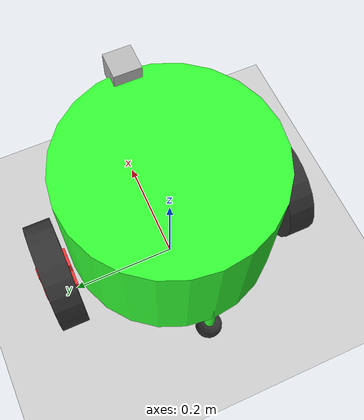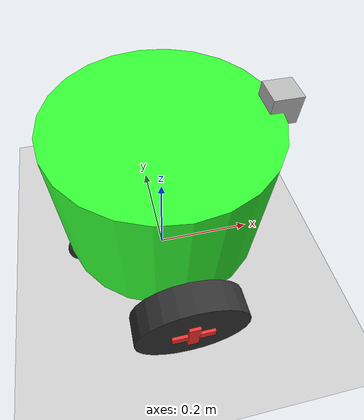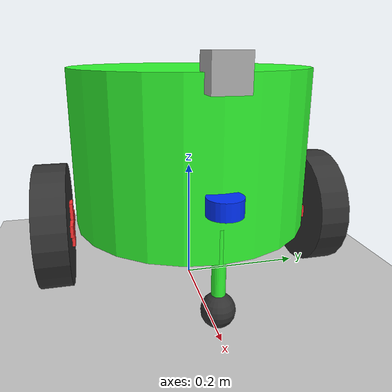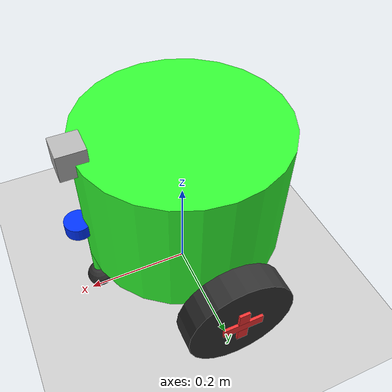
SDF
<?xml version="1.0"?>
<sdf version='1.11'>
  <world name='empty'>
    <physics name='1ms' type='ignored'>
      <max_step_size>0.001</max_step_size>
      <real_time_factor>1</real_time_factor>
      <real_time_update_rate>1000</real_time_update_rate>
    </physics>
    <plugin name='gz::sim::systems::Physics' filename='gz-sim-physics-system'/>
    <plugin name='gz::sim::systems::UserCommands' filename='gz-sim-user-commands-system'/>
    <plugin name='gz::sim::systems::SceneBroadcaster' filename='gz-sim-scene-broadcaster-system'/>
    <plugin name='gz::sim::systems::Contact' filename='gz-sim-contact-system'/>
    <gravity>0 0 -9.8</gravity>
    <magnetic_field>6e-06 2.3e-05 -4.2e-05</magnetic_field>
    <atmosphere type='adiabatic'/>

    <plugin filename="gz-sim-navsat-system" name="gz::sim::systems::NavSat"/>
    <spherical_coordinates>
      <surface_model>EARTH_WGS84</surface_model>
      <world_frame_orientation>ENU</world_frame_orientation>
      <latitude_deg>45.0</latitude_deg>
      <longitude_deg>-81.0</longitude_deg>
      <elevation>0.0</elevation>
      <heading_deg>0.0</heading_deg>
    </spherical_coordinates>

    <scene>
      <ambient>0.400000006 0.400000006 0.400000006 1</ambient>
      <background>0.699999988 0.699999988 0.699999988 1</background>
      <sky></sky>
      <shadows>false</shadows>
    </scene>
    <model name='ground_plane'>
      <static>true</static>
      <link name='link'>
        <collision name='collision'>
          <geometry>
            <plane>
              <normal>0 0 1</normal>
              <size>1000 1000</size>
            </plane>
          </geometry>
          <surface>
            <friction>
              <ode/>
            </friction>
            <bounce/>
            <contact/>
          </surface>
        </collision>
        <visual name='visual'>
          <geometry>
            <plane>
              <normal>0 0 1</normal>
              <size>1000 1000</size>
            </plane>
          </geometry>
          <material>
            <ambient>0.8 0.8 0.8 1</ambient>
            <diffuse>0.8 0.8 0.8 1</diffuse>
            <specular>0.8 0.8 0.8 1</specular>
          </material>
        </visual>
        <pose>0 0 0 0 -0 0</pose>
        <inertial>
          <pose>0 0 0 0 -0 0</pose>
          <mass>1</mass>
          <inertia>
            <ixx>1</ixx>
            <ixy>0</ixy>
            <ixz>0</ixz>
            <iyy>1</iyy>
            <iyz>0</iyz>
            <izz>1</izz>
          </inertia>
        </inertial>
        <enable_wind>false</enable_wind>
      </link>
      <pose>0 0 0 0 -0 0</pose>
      <self_collide>false</self_collide>
    </model>
    <light name='sun' type='directional'>
      <pose>0 0 10 0 -0 0</pose>
      <cast_shadows>true</cast_shadows>
      <intensity>1</intensity>
      <direction>-0.5 0.1 -0.9</direction>
      <diffuse>0.8 0.8 0.8 1</diffuse>
      <specular>0.2 0.2 0.2 1</specular>
      <attenuation>
        <range>1000</range>
        <linear>0.01</linear>
        <constant>0.90000000000000002</constant>
        <quadratic>0.001</quadratic>
      </attenuation>
      <spot>
        <inner_angle>0</inner_angle>
        <outer_angle>0</outer_angle>
        <falloff>0</falloff>
      </spot>
    </light>

    <model name="roundbot">
      <self_collide>true</self_collide>
      <pose>0 0 0 0 0 0</pose>
      <include merge="true">
        <uri>package://roundbot_description/models/roundbot</uri>
      </include>
    </model>
  </world>
</sdf>

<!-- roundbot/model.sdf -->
<sdf version="1.11">
  <model name='roundbot'>
    <link name="base_footprint">
      <pose>0 0 0 0 0 0</pose>
    </link>

    <link name="chassis">
      <pose>0 0 0.2375 0 0 0</pose>

      <visual name="visual_chassis">
        <geometry>
          <cylinder>
            <radius>0.19</radius>
            <length>0.25</length>
          </cylinder>
        </geometry>

        <material>
          <ambient>0.2 1.0 0.2 1</ambient>
          <diffuse>0.2 1.0 0.2 1</diffuse>
          <specular>0.2 1.0 0.2 1</specular>
        </material>
      </visual>
      <visual name="front_caster_post">
        <pose>0.18 0 -0.125 0 0 0</pose>
        <geometry>
          <cylinder>
            <radius>0.01</radius>
            <length>0.1</length>
          </cylinder>
        </geometry>

        <material>
          <ambient>0.2 1.0 0.2 1</ambient>
          <diffuse>0.2 1.0 0.2 1</diffuse>
          <specular>0.2 1.0 0.2 1</specular>
        </material>
      </visual>
      <visual name="visual_front_caster">
        <pose>0.18 0 -0.2 0 0 0</pose>
        <geometry>
          <sphere>
            <radius>0.025</radius>
          </sphere>
        </geometry>

        <material>
          <ambient>0.2 0.2 0.2 1</ambient>
          <diffuse>0.2 0.2 0.2 1</diffuse>
          <specular>0.2 0.2 0.2 1</specular>
        </material>
      </visual>
      <visual name="rear_caster_post">
        <pose>-0.18 0 -0.125 0 0 0</pose>
        <geometry>
          <cylinder>
            <radius>0.01</radius>
            <length>0.1</length>
          </cylinder>
        </geometry>

        <material>
          <ambient>0.2 1.0 0.2 1</ambient>
          <diffuse>0.2 1.0 0.2 1</diffuse>
          <specular>0.2 1.0 0.2 1</specular>
        </material>
      </visual>
      <visual name="visual_rear_caster">
        <pose>-0.18 0 -0.2 0 0 0</pose>
        <geometry>
          <sphere>
            <radius>0.025</radius>
          </sphere>
        </geometry>

        <material>
          <ambient>0.2 0.2 0.2 1</ambient>
          <diffuse>0.2 0.2 0.2 1</diffuse>
          <specular>0.2 0.2 0.2 1</specular>
        </material>
      </visual>

      <collision name="collision_chassis">
        <geometry>
          <cylinder>
            <radius>0.19</radius>
            <length>0.25</length>
          </cylinder>
        </geometry>
      </collision>
      <collision name="collision_front_caster">
        <pose>0.18 0 -0.2 0 0 0</pose>
        <geometry>
          <sphere>
            <radius>0.025</radius>
          </sphere>
        </geometry>
        <surface>
          <friction>
            <ode>
              <mu>0</mu>
              <mu2>0</mu2>
            </ode>
          </friction>
        </surface>
      </collision>
      <collision name="collision_rear_caster">
        <pose>-0.18 0 -0.2 0 0 0</pose>
        <geometry>
          <sphere>
            <radius>0.025</radius>
          </sphere>
        </geometry>
        <surface>
          <friction>
            <ode>
              <mu>0</mu>
              <mu2>0</mu2>
            </ode>
          </friction>
        </surface>
      </collision>

      <inertial>
        <mass>2.0</mass>
        <inertia>
          <ixx>0.2847</ixx>
          <ixy>0</ixy>
          <ixz>0</ixz>
          <iyy>0.2847</iyy>
          <iyz>0</iyz>
          <izz>0.361</izz>
        </inertia>
      </inertial>
    </link>

    <link name="left_wheel">
      <pose>0 0.225 0.1125 -1.5707963267948966 0 0</pose>

      <visual name="visual_left_wheel">
        <geometry>
          <cylinder>
            <radius>0.1</radius>
            <length>0.05</length>
          </cylinder>
        </geometry>

        <material>
          <ambient>0.2 0.2 0.2 1</ambient>
          <diffuse>0.2 0.2 0.2 1</diffuse>
          <specular>0.2 0.2 0.2 1</specular>
        </material>
      </visual>
      <visual name="visual_left_hub1">
        <geometry>
          <box>
            <size>0.02 0.075 0.06</size>
          </box>
        </geometry>

        <material>
          <ambient>1.0 0.2 0.2 1</ambient>
          <diffuse>1.0 0.2 0.2 1</diffuse>
          <specular>1.0 0.2 0.2 1</specular>
        </material>
      </visual>
      <visual name="visual_left_hub2">
        <geometry>
          <box>
            <size>0.075 0.02 0.06</size>
          </box>
        </geometry>

        <material>
          <ambient>1.0 0.2 0.2 1</ambient>
          <diffuse>1.0 0.2 0.2 1</diffuse>
          <specular>1.0 0.2 0.2 1</specular>
        </material>
      </visual>

      <collision name="collision_left_wheel">
        <geometry>
          <cylinder>
            <radius>0.1</radius>
            <length>0.05</length>
          </cylinder>
        </geometry>
      </collision>

      <inertial>
        <mass>0.25</mass>
        <inertia>
          <ixx>0.01</ixx>
          <ixy>0</ixy>
          <ixz>0</ixz>
          <iyy>0.01</iyy>
          <iyz>0</iyz>
          <izz>0.02</izz>
        </inertia>
      </inertial>
    </link>

    <link name="right_wheel">
      <pose>0 -0.225 0.1125 -1.5707963267948966 0 0</pose>

      <visual name="visual_right_wheel">
        <geometry>
          <cylinder>
            <radius>0.1</radius>
            <length>0.05</length>
          </cylinder>
        </geometry>

        <material>
          <ambient>0.2 0.2 0.2 1</ambient>
          <diffuse>0.2 0.2 0.2 1</diffuse>
          <specular>0.2 0.2 0.2 1</specular>
        </material>
      </visual>
      <visual name="visual_right_hub1">
        <geometry>
          <box>
            <size>0.02 0.075 0.06</size>
          </box>
        </geometry>

        <material>
          <ambient>1.0 0.2 0.2 1</ambient>
          <diffuse>1.0 0.2 0.2 1</diffuse>
          <specular>1.0 0.2 0.2 1</specular>
        </material>
      </visual>
      <visual name="visual_right_hub2">
        <geometry>
          <box>
            <size>0.075 0.02 0.06</size>
          </box>
        </geometry>

        <material>
          <ambient>1.0 0.2 0.2 1</ambient>
          <diffuse>1.0 0.2 0.2 1</diffuse>
          <specular>1.0 0.2 0.2 1</specular>
        </material>
      </visual>

      <collision name="collision_right_wheel">
        <geometry>
          <cylinder>
            <radius>0.1</radius>
            <length>0.05</length>
          </cylinder>
        </geometry>
      </collision>

      <inertial>
        <mass>1.0</mass>
        <inertia>
          <ixx>0.01</ixx>
          <ixy>0</ixy>
          <ixz>0</ixz>
          <iyy>0.01</iyy>
          <iyz>0</iyz>
          <izz>0.02</izz>
        </inertia>
      </inertial>
    </link>

    <link name="lidar">
      <pose>0.2 0 0.2 0 0 0</pose>
      <visual name="visual_lidar">
        <geometry>
          <cylinder>
            <radius>0.025</radius>
            <length>0.025</length>
          </cylinder>
        </geometry>

        <material>
          <ambient>0.0 0.2 1.0 1</ambient>
          <diffuse>0.0 0.2 1.0 1</diffuse>
          <specular>0.0 0.2 1.0 1</specular>
        </material>
      </visual>
      <sensor name='gpu_lidar' type='gpu_lidar'>"
        <gz_frame_id>lidar</gz_frame_id>
        <pose>0 0 0 0 0 0</pose>
        <topic>scan</topic>
        <update_rate>10</update_rate>
        <ray>
            <scan>
                <horizontal>
                    <samples>1000</samples>
                    <resolution>1</resolution>
                    <min_angle>-2.0</min_angle>
                    <max_angle>2.0</max_angle>
                </horizontal>
                <vertical>
                    <samples>1</samples>
                    <resolution>0.01</resolution>
                    <min_angle>0</min_angle>
                    <max_angle>0</max_angle>
                </vertical>
            </scan>
            <range>
                <min>0.08</min>
                <max>30.0</max>
                <resolution>0.01</resolution>
            </range>
        </ray>
        <always_on>1</always_on>
        <visualize>true</visualize>
      </sensor>
    </link>

    <link name="camera">
      <pose>0.19 0 0.3625 0 0 0</pose>
      <inertial>
        <mass>0.1</mass>
        <inertia>
          <ixx>0.000166667</ixx>
          <iyy>0.000166667</iyy>
          <izz>0.000166667</izz>
        </inertia>
      </inertial>
      <collision name="collision">
        <geometry>
          <box>
            <size>0.05 0.05 0.05</size>
          </box>
        </geometry>
      </collision>
      <visual name="visual">
        <geometry>
          <box>
            <size>0.05 0.05 0.05</size>
          </box>
        </geometry>
      </visual>
      <sensor name="camera_sensor" type="camera">
        <always_on>1</always_on>
        <update_rate>30</update_rate>
        <camera>
          <horizontal_fov>1.047</horizontal_fov>
          <image>
            <width>640</width>
            <height>480</height>
            <format>R8G8B8</format>
          </image>
          <clip>
            <near>0.5</near>
            <far>1000</far>
          </clip>
          <optical_frame_id>camera_optical</optical_frame_id>
        </camera>
        <topic>image_raw</topic>
        <frame_id>camera</frame_id>
      </sensor>
    </link>

    <link name="camera_optical">
      <pose relative_to="camera">0 0 0 -1.570796326 0 -1.570796326</pose>
    </link>

    <joint name="left_wheel_joint" type="revolute">
      <parent>chassis</parent>
      <child>left_wheel</child>
      <axis>
        <xyz>0 0 1</xyz>
        <limit>
          <lower>-1.79769e+308</lower>
          <upper>1.79769e+308</upper>
        </limit>
      </axis>
    </joint>

    <joint name="chassis_joint" type="fixed">
      <parent>base_footprint</parent>
      <child>chassis</child>
    </joint>

    <joint name="lidar_joint" type="fixed">
      <parent>chassis</parent>
      <child>lidar</child>
    </joint>

    <joint name="camera_joint" type="fixed">
      <parent>chassis</parent>
      <child>camera</child>
    </joint>

    <joint name="camera_optical_joint" type="fixed">
      <parent>camera</parent>
      <child>camera_optical</child>
    </joint>

    <joint name="right_wheel_joint" type="revolute">
      <parent>chassis</parent>
      <child>right_wheel</child>
      <axis>
        <xyz>0 0 1</xyz>
        <limit>
          <lower>-1.79769e+308</lower>
          <upper>1.79769e+308</upper>
        </limit>
      </axis>
    </joint>

    <plugin filename="RoundbotInterfacePlugin" name="roundbot_gazebo::RoundbotInterfacePlugin">
      <pub_tf>false</pub_tf>
    </plugin>

    <plugin filename="gz-sim-joint-state-publisher-system" name="gz::sim::systems::JointStatePublisher">
      <topic>/model/roundbot/joint_states</topic>
    </plugin>
  </model>
</sdf>
